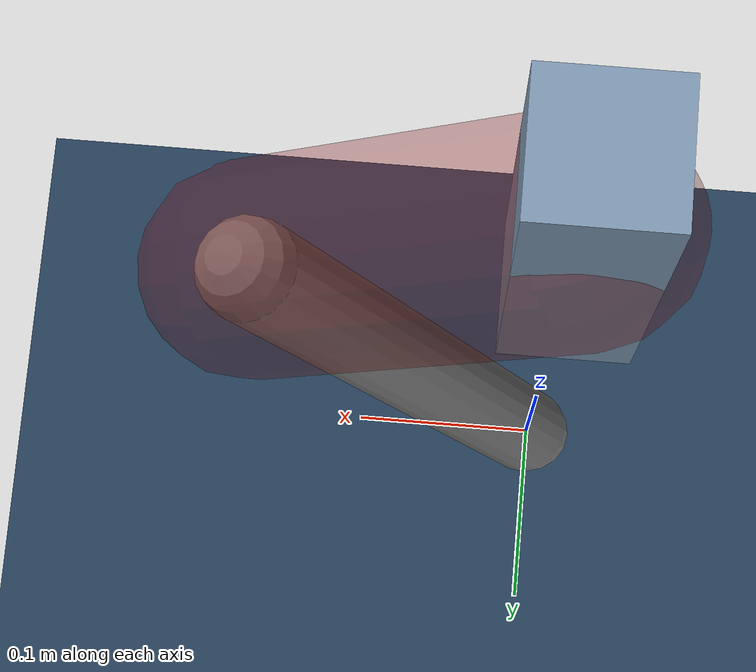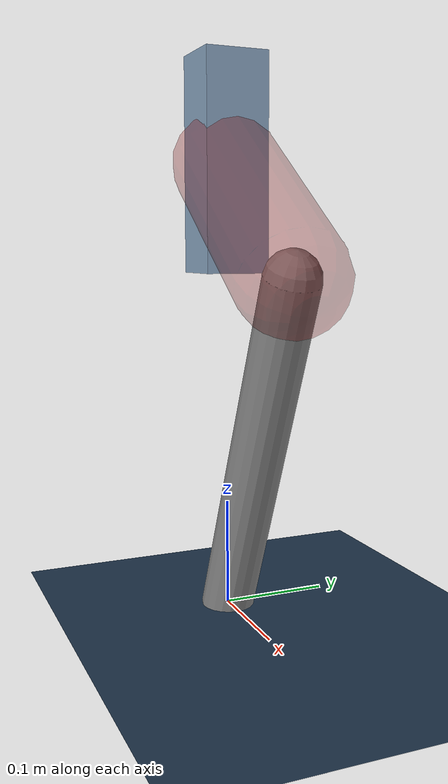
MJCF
<mujoco model="Hopper2D">
	<compiler inertiafromgeom="true" angle="radian" />
	<option timestep="0.001" integrator="implicit" cone="elliptic" solver="Newton" tolerance="1e-10" />

	<default>
		<geom contype="1" conaffinity="1" condim="3" friction="2 0.005 0.0001" solref="0.005 1" />
		<joint limited="true" damping="0.1" />
	</default>

	<asset>
		<texture name="skybox" type="skybox" builtin="gradient" rgb1=".4 .6 .8" rgb2="0 0 0" width="800" height="800" />
		<texture name="grid" type="2d" builtin="checker" rgb1=".1 .2 .3" rgb2=".2 .3 .4" width="300" height="300" mark="edge" markrgb=".2 .3 .4" />
		<material name="ground" texture="grid" texrepeat="1 1" texuniform="true" reflectance="0.1" />
		<material name="leg" rgba="0.5 0.6 0.7 1" />
	</asset>

	<worldbody>

		<geom name="floor" type="plane" size="5 5 0.25" material="ground" />

		<light directional="false" diffuse="0.8 0.8 0.8" specular="0.3 0.3 0.3" pos="0 0 2" dir="0 0 -1" />
		<light mode="targetbodycom" target="base" directional="false" diffuse="0.8 0.8 0.8" specular="0.3 0.3 0.3" pos="0 0 2" dir="0 0 -1" />

		<camera name="fixed" pos="0 -2 1" xyaxes="1 0 0 0 0 1" />
		<camera name="tracking" mode="trackcom" pos="0 -3 1" />

		<body name="root" pos="0 0 0.42008291658926966">
			<joint name="slide_x" type="slide" axis="1 0 0" range="-100 100" />
			<joint name="slide_z" type="slide" axis="0 0 1" range="0 10" />

			<body name="base" pos="0 0 0">
				<geom name="torso" type="box" size="0.03 0.03 0.1" mass="2.9779999999999998" material="leg" />

				<body name="link1" pos="0 0 0" euler="0 0.6147201824301662 0">
					<joint type="hinge" axis="0 -1 0" pos="0 0 0" name="hinge1" limited="true" range="-3.14 3.14" stiffness="0" damping="0.1" />
					<geom name="thigh" type="capsule" fromto="0 0 0 0.17594134053742458 0 0" size="0.05" rgba="0.5 0 0 0.3" mass="0.6706592172898189" />

					<body name="link2" pos="0.17594134053742458 0 0" euler="0 1.379861709933168 0">
						<joint type="hinge" axis="0 -1 0" pos="0 0 0" name="hinge2" limited="true" range="-3.14 3.14" stiffness="0" damping="0.1" />
						<geom name="shank" type="capsule" fromto="0 0 0 0.349532325485004 0 0" size="0.025" mass="0.5235258603880033" />

					</body>
				</body>
			</body>
		</body>
	</worldbody>

	<actuator>
		<motor name="torque1" joint="hinge1" ctrlrange="-116.2256842317832 116.2256842317832" ctrllimited="true" gear="1" />
		<motor name="torque2" joint="hinge2" ctrlrange="-63.25685705110044 63.25685705110044" ctrllimited="true" gear="1" />
	</actuator>
</mujoco>
